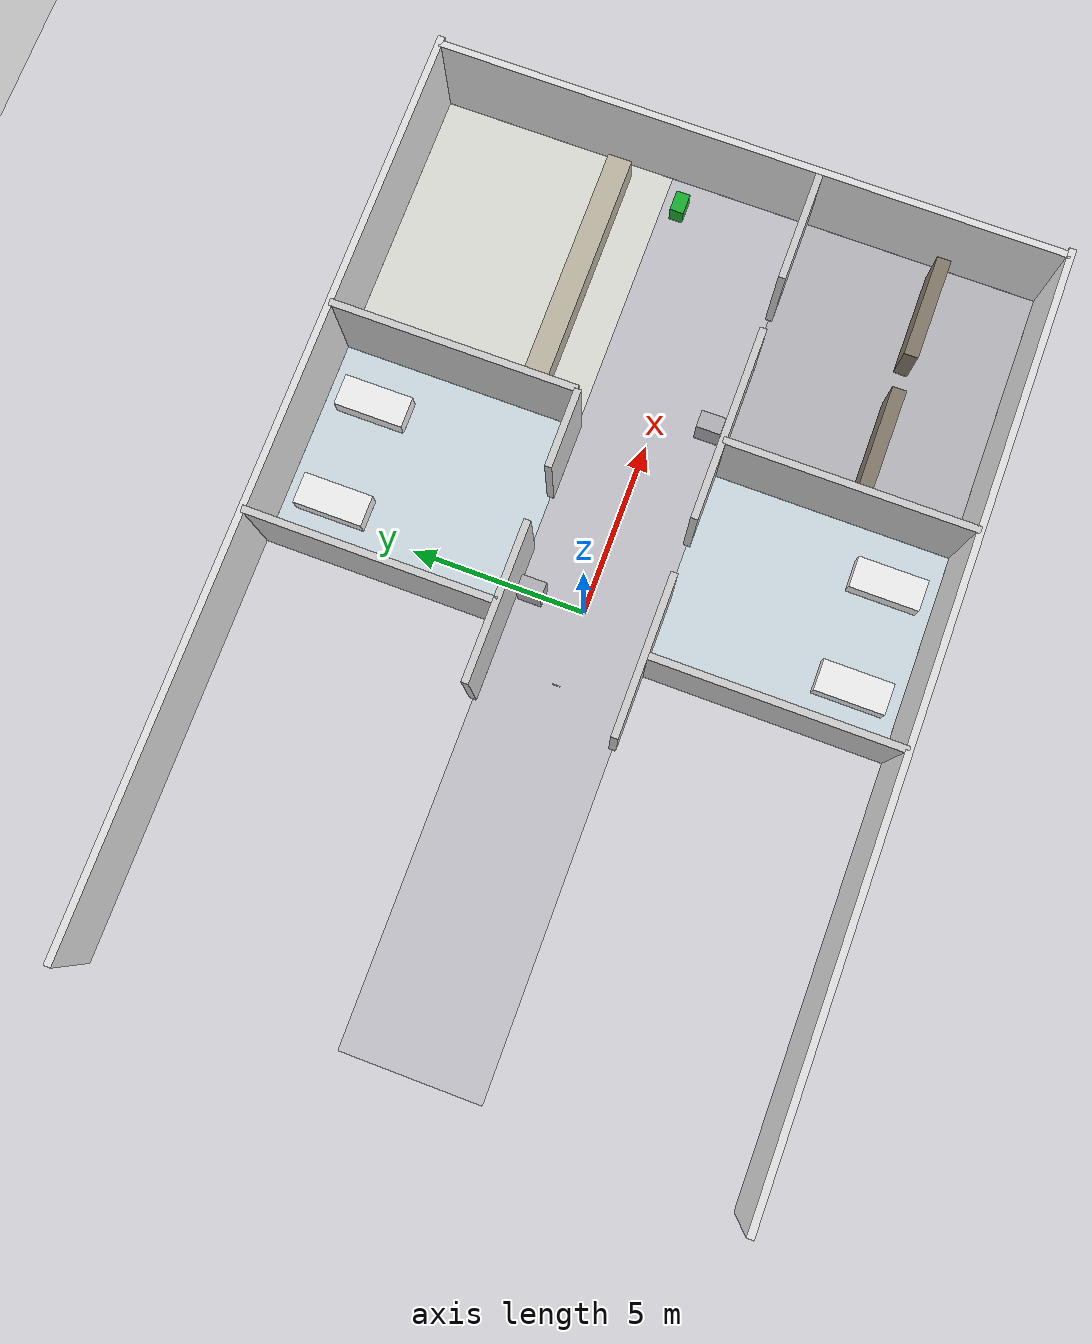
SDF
<sdf version="1.8">
 <world name="hospital">
  <model name="ground_plane">
   <static>true</static>
   <link name="link">
    <collision name="c"><geometry><plane><normal>0 0 1</normal><size>100 100</size></plane></geometry></collision>
    <visual name="v">
     <geometry><plane><normal>0 0 1</normal><size>100 100</size></plane></geometry>
     <material><ambient>0.84 0.84 0.86 1</ambient><diffuse>0.84 0.84 0.86 1</diffuse></material>
    </visual>
   </link>
  </model>
  <model name="zone_corridor">
   <static>true</static>
   <pose>0 0 0.003 0 0 0</pose>
   <link name="link">
    <collision name="c"><geometry><box><size>26 4 0.005</size></box></geometry></collision>
    <visual name="v">
     <geometry><box><size>26 4 0.005</size></box></geometry>
     <material><ambient>0.80 0.80 0.83 0.8</ambient><diffuse>0.80 0.80 0.83 0.8</diffuse></material>
    </visual>
   </link>
  </model>
  <model name="zone_n3">
   <static>true</static>
   <pose>2 5.5 0.003 0 0 0</pose>
   <link name="link">
    <collision name="c"><geometry><box><size>6 7 0.005</size></box></geometry></collision>
    <visual name="v">
     <geometry><box><size>6 7 0.005</size></box></geometry>
     <material><ambient>0.85 0.92 0.96 0.7</ambient><diffuse>0.85 0.92 0.96 0.7</diffuse></material>
    </visual>
   </link>
  </model>
  <model name="zone_nurse">
   <static>true</static>
   <pose>9 5.5 0.003 0 0 0</pose>
   <link name="link">
    <collision name="c"><geometry><box><size>8 7 0.005</size></box></geometry></collision>
    <visual name="v">
     <geometry><box><size>8 7 0.005</size></box></geometry>
     <material><ambient>0.94 0.94 0.90 0.7</ambient><diffuse>0.94 0.94 0.90 0.7</diffuse></material>
    </visual>
   </link>
  </model>
  <model name="zone_s3">
   <static>true</static>
   <pose>2 -5.5 0.003 0 0 0</pose>
   <link name="link">
    <collision name="c"><geometry><box><size>6 7 0.005</size></box></geometry></collision>
    <visual name="v">
     <geometry><box><size>6 7 0.005</size></box></geometry>
     <material><ambient>0.85 0.92 0.96 0.7</ambient><diffuse>0.85 0.92 0.96 0.7</diffuse></material>
    </visual>
   </link>
  </model>
  <model name="zone_storage">
   <static>true</static>
   <pose>9 -5.5 0.003 0 0 0</pose>
   <link name="link">
    <collision name="c"><geometry><box><size>8 7 0.005</size></box></geometry></collision>
    <visual name="v">
     <geometry><box><size>8 7 0.005</size></box></geometry>
     <material><ambient>0.72 0.72 0.74 0.7</ambient><diffuse>0.72 0.72 0.74 0.7</diffuse></material>
    </visual>
   </link>
  </model>
  <model name="wall_north">
   <static>true</static>
   <pose>0 9 1.5 0 0 0</pose>
   <link name="link">
    <collision name="c"><geometry><box><size>26.4 0.2 3</size></box></geometry></collision>
    <visual name="v">
     <geometry><box><size>26.4 0.2 3</size></box></geometry>
     <material><ambient>0.90 0.90 0.90 1</ambient><diffuse>0.90 0.90 0.90 1</diffuse></material>
    </visual>
   </link>
  </model>
  <model name="wall_south">
   <static>true</static>
   <pose>0 -9 1.5 0 0 0</pose>
   <link name="link">
    <collision name="c"><geometry><box><size>26.4 0.2 3</size></box></geometry></collision>
    <visual name="v">
     <geometry><box><size>26.4 0.2 3</size></box></geometry>
     <material><ambient>0.90 0.90 0.90 1</ambient><diffuse>0.90 0.90 0.90 1</diffuse></material>
    </visual>
   </link>
  </model>
  <model name="wall_east">
   <static>true</static>
   <pose>13 0 1.5 0 0 0</pose>
   <link name="link">
    <collision name="c"><geometry><box><size>0.2 18 3</size></box></geometry></collision>
    <visual name="v">
     <geometry><box><size>0.2 18 3</size></box></geometry>
     <material><ambient>0.90 0.90 0.90 1</ambient><diffuse>0.90 0.90 0.90 1</diffuse></material>
    </visual>
   </link>
  </model>
  <model name="ncw_3">
   <static>true</static>
   <pose>-1.0 2 1.5 0 0 0</pose>
   <link name="link">
    <collision name="c"><geometry><box><size>4.5 0.2 3</size></box></geometry></collision>
    <visual name="v">
     <geometry><box><size>4.5 0.2 3</size></box></geometry>
     <material><ambient>0.82 0.82 0.82 1</ambient><diffuse>0.82 0.82 0.82 1</diffuse></material>
    </visual>
   </link>
  </model>
  <model name="ncw_4">
   <static>true</static>
   <pose>3.875 2 1.5 0 0 0</pose>
   <link name="link">
    <collision name="c"><geometry><box><size>2.25 0.2 3</size></box></geometry></collision>
    <visual name="v">
     <geometry><box><size>2.25 0.2 3</size></box></geometry>
     <material><ambient>0.82 0.82 0.82 1</ambient><diffuse>0.82 0.82 0.82 1</diffuse></material>
    </visual>
   </link>
  </model>
  <model name="scw_3">
   <static>true</static>
   <pose>-1.0 -2 1.5 0 0 0</pose>
   <link name="link">
    <collision name="c"><geometry><box><size>4.5 0.2 3</size></box></geometry></collision>
    <visual name="v">
     <geometry><box><size>4.5 0.2 3</size></box></geometry>
     <material><ambient>0.82 0.82 0.82 1</ambient><diffuse>0.82 0.82 0.82 1</diffuse></material>
    </visual>
   </link>
  </model>
  <model name="scw_4">
   <static>true</static>
   <pose>5.5 -2 1.5 0 0 0</pose>
   <link name="link">
    <collision name="c"><geometry><box><size>5.5 0.2 3</size></box></geometry></collision>
    <visual name="v">
     <geometry><box><size>5.5 0.2 3</size></box></geometry>
     <material><ambient>0.82 0.82 0.82 1</ambient><diffuse>0.82 0.82 0.82 1</diffuse></material>
    </visual>
   </link>
  </model>
  <model name="scw_5">
   <static>true</static>
   <pose>11.375 -2 1.5 0 0 0</pose>
   <link name="link">
    <collision name="c"><geometry><box><size>3.25 0.2 3</size></box></geometry></collision>
    <visual name="v">
     <geometry><box><size>3.25 0.2 3</size></box></geometry>
     <material><ambient>0.82 0.82 0.82 1</ambient><diffuse>0.82 0.82 0.82 1</diffuse></material>
    </visual>
   </link>
  </model>
  <model name="ndiv_n2_n3">
   <static>true</static>
   <pose>-1 5.5 1.5 0 0 0</pose>
   <link name="link">
    <collision name="c"><geometry><box><size>0.2 7 3</size></box></geometry></collision>
    <visual name="v">
     <geometry><box><size>0.2 7 3</size></box></geometry>
     <material><ambient>0.82 0.82 0.82 1</ambient><diffuse>0.82 0.82 0.82 1</diffuse></material>
    </visual>
   </link>
  </model>
  <model name="ndiv_n3_nrs">
   <static>true</static>
   <pose>5 5.5 1.5 0 0 0</pose>
   <link name="link">
    <collision name="c"><geometry><box><size>0.2 7 3</size></box></geometry></collision>
    <visual name="v">
     <geometry><box><size>0.2 7 3</size></box></geometry>
     <material><ambient>0.82 0.82 0.82 1</ambient><diffuse>0.82 0.82 0.82 1</diffuse></material>
    </visual>
   </link>
  </model>
  <model name="sdiv_s2_s3">
   <static>true</static>
   <pose>-1 -5.5 1.5 0 0 0</pose>
   <link name="link">
    <collision name="c"><geometry><box><size>0.2 7 3</size></box></geometry></collision>
    <visual name="v">
     <geometry><box><size>0.2 7 3</size></box></geometry>
     <material><ambient>0.82 0.82 0.82 1</ambient><diffuse>0.82 0.82 0.82 1</diffuse></material>
    </visual>
   </link>
  </model>
  <model name="sdiv_s3_sto">
   <static>true</static>
   <pose>5 -5.5 1.5 0 0 0</pose>
   <link name="link">
    <collision name="c"><geometry><box><size>0.2 7 3</size></box></geometry></collision>
    <visual name="v">
     <geometry><box><size>0.2 7 3</size></box></geometry>
     <material><ambient>0.82 0.82 0.82 1</ambient><diffuse>0.82 0.82 0.82 1</diffuse></material>
    </visual>
   </link>
  </model>
  <model name="bed_n3_a">
   <static>true</static>
   <pose>0.5 7.5 0.3 0 0 0</pose>
   <link name="link">
    <collision name="c"><geometry><box><size>0.9 2.0 0.6</size></box></geometry></collision>
    <visual name="v">
     <geometry><box><size>0.9 2.0 0.6</size></box></geometry>
     <material><ambient>0.95 0.95 0.95 1</ambient><diffuse>0.95 0.95 0.95 1</diffuse></material>
    </visual>
   </link>
  </model>
  <model name="bed_n3_b">
   <static>true</static>
   <pose>3.5 7.5 0.3 0 0 0</pose>
   <link name="link">
    <collision name="c"><geometry><box><size>0.9 2.0 0.6</size></box></geometry></collision>
    <visual name="v">
     <geometry><box><size>0.9 2.0 0.6</size></box></geometry>
     <material><ambient>0.95 0.95 0.95 1</ambient><diffuse>0.95 0.95 0.95 1</diffuse></material>
    </visual>
   </link>
  </model>
  <model name="bed_s3_a">
   <static>true</static>
   <pose>0.5 -7.5 0.3 0 0 0</pose>
   <link name="link">
    <collision name="c"><geometry><box><size>0.9 2.0 0.6</size></box></geometry></collision>
    <visual name="v">
     <geometry><box><size>0.9 2.0 0.6</size></box></geometry>
     <material><ambient>0.95 0.95 0.95 1</ambient><diffuse>0.95 0.95 0.95 1</diffuse></material>
    </visual>
   </link>
  </model>
  <model name="bed_s3_b">
   <static>true</static>
   <pose>3.5 -7.5 0.3 0 0 0</pose>
   <link name="link">
    <collision name="c"><geometry><box><size>0.9 2.0 0.6</size></box></geometry></collision>
    <visual name="v">
     <geometry><box><size>0.9 2.0 0.6</size></box></geometry>
     <material><ambient>0.95 0.95 0.95 1</ambient><diffuse>0.95 0.95 0.95 1</diffuse></material>
    </visual>
   </link>
  </model>
  <model name="nurse_counter">
   <static>true</static>
   <pose>9 3.5 0.5 0 0 0</pose>
   <link name="link">
    <collision name="c"><geometry><box><size>7.0 0.7 1.0</size></box></geometry></collision>
    <visual name="v">
     <geometry><box><size>7.0 0.7 1.0</size></box></geometry>
     <material><ambient>0.75 0.72 0.65 1</ambient><diffuse>0.75 0.72 0.65 1</diffuse></material>
    </visual>
   </link>
  </model>
  <model name="shelf_sto_1">
   <static>true</static>
   <pose>7 -6 0.75 0 0 0</pose>
   <link name="link">
    <collision name="c"><geometry><box><size>3 0.4 1.5</size></box></geometry></collision>
    <visual name="v">
     <geometry><box><size>3 0.4 1.5</size></box></geometry>
     <material><ambient>0.52 0.48 0.42 1</ambient><diffuse>0.52 0.48 0.42 1</diffuse></material>
    </visual>
   </link>
  </model>
  <model name="shelf_sto_2">
   <static>true</static>
   <pose>11 -6 0.75 0 0 0</pose>
   <link name="link">
    <collision name="c"><geometry><box><size>3 0.4 1.5</size></box></geometry></collision>
    <visual name="v">
     <geometry><box><size>3 0.4 1.5</size></box></geometry>
     <material><ambient>0.52 0.48 0.42 1</ambient><diffuse>0.52 0.48 0.42 1</diffuse></material>
    </visual>
   </link>
  </model>
  <model name="cart_1">
   <static>true</static>
   <pose>0 1.5 0.5 0 0 0</pose>
   <link name="link">
    <collision name="c"><geometry><box><size>0.5 0.7 1.0</size></box></geometry></collision>
    <visual name="v">
     <geometry><box><size>0.5 0.7 1.0</size></box></geometry>
     <material><ambient>0.70 0.70 0.72 1</ambient><diffuse>0.70 0.70 0.72 1</diffuse></material>
    </visual>
   </link>
  </model>
  <model name="cart_2">
   <static>true</static>
   <pose>6 -1.5 0.5 0 0 0</pose>
   <link name="link">
    <collision name="c"><geometry><box><size>0.5 0.7 1.0</size></box></geometry></collision>
    <visual name="v">
     <geometry><box><size>0.5 0.7 1.0</size></box></geometry>
     <material><ambient>0.70 0.70 0.72 1</ambient><diffuse>0.70 0.70 0.72 1</diffuse></material>
    </visual>
   </link>
  </model>
  <model name="charger">
   <static>true</static>
   <pose>12 1.5 0.3 0 0 0</pose>
   <link name="link">
    <collision name="c"><geometry><box><size>0.6 0.4 0.6</size></box></geometry></collision>
    <visual name="v">
     <geometry><box><size>0.6 0.4 0.6</size></box></geometry>
     <material><ambient>0.1 0.7 0.2 1</ambient><diffuse>0.1 0.7 0.2 1</diffuse></material>
    </visual>
   </link>
  </model>
  <model name="world_monitor_cam">
   <static>true</static>
   <pose>-1.4 0.45 0.4 0 0.2810 -2.5952</pose>
   <link name="link">
    <sensor name="monitor_camera" type="camera">
     <always_on>true</always_on>
     <update_rate>10</update_rate>
     <topic>world_monitor/image_raw</topic>
     <camera>
      <horizontal_fov>1.0</horizontal_fov>
      <image><width>800</width><height>600</height><format>R8G8B8</format></image>
      <clip><near>0.05</near><far>20.0</far></clip>
     </camera>
    </sensor>
   </link>
  </model>
  <model name="dock_marker_r3c3">
   <static>true</static>
   <pose>-2.14 0.02 0.13 0 0 0</pose>
   <link name="link">
    <visual name="v">
     <geometry><box><size>0.01 0.04 0.04</size></box></geometry>
     <material><ambient>0.95 0.95 0.95 1</ambient><diffuse>0.95 0.95 0.95 1</diffuse></material>
    </visual>
   </link>
  </model>
  <model name="dock_marker_r3c4">
   <static>true</static>
   <pose>-2.14 0.06 0.13 0 0 0</pose>
   <link name="link">
    <visual name="v">
     <geometry><box><size>0.01 0.04 0.04</size></box></geometry>
     <material><ambient>0.95 0.95 0.95 1</ambient><diffuse>0.95 0.95 0.95 1</diffuse></material>
    </visual>
   </link>
  </model>
  <model name="dock_marker_r3c5">
   <static>true</static>
   <pose>-2.14 0.1 0.13 0 0 0</pose>
   <link name="link">
    <visual name="v">
     <geometry><box><size>0.01 0.04 0.04</size></box></geometry>
     <material><ambient>0.02 0.02 0.02 1</ambient><diffuse>0.02 0.02 0.02 1</diffuse></material>
    </visual>
   </link>
  </model>
  <model name="dock_marker_r4c0">
   <static>true</static>
   <pose>-2.14 -0.1 0.09 0 0 0</pose>
   <link name="link">
    <visual name="v">
     <geometry><box><size>0.01 0.04 0.04</size></box></geometry>
     <material><ambient>0.02 0.02 0.02 1</ambient><diffuse>0.02 0.02 0.02 1</diffuse></material>
    </visual>
   </link>
  </model>
  <model name="dock_marker_r4c1">
   <static>true</static>
   <pose>-2.14 -0.06 0.09 0 0 0</pose>
   <link name="link">
    <visual name="v">
     <geometry><box><size>0.01 0.04 0.04</size></box></geometry>
     <material><ambient>0.02 0.02 0.02 1</ambient><diffuse>0.02 0.02 0.02 1</diffuse></material>
    </visual>
   </link>
  </model>
  <model name="dock_marker_r4c2">
   <static>true</static>
   <pose>-2.14 -0.02 0.09 0 0 0</pose>
   <link name="link">
    <visual name="v">
     <geometry><box><size>0.01 0.04 0.04</size></box></geometry>
     <material><ambient>0.02 0.02 0.02 1</ambient><diffuse>0.02 0.02 0.02 1</diffuse></material>
    </visual>
   </link>
  </model>
  <model name="dock_marker_r4c3">
   <static>true</static>
   <pose>-2.14 0.02 0.09 0 0 0</pose>
   <link name="link">
    <visual name="v">
     <geometry><box><size>0.01 0.04 0.04</size></box></geometry>
     <material><ambient>0.95 0.95 0.95 1</ambient><diffuse>0.95 0.95 0.95 1</diffuse></material>
    </visual>
   </link>
  </model>
  <model name="dock_marker_r4c4">
   <static>true</static>
   <pose>-2.14 0.06 0.09 0 0 0</pose>
   <link name="link">
    <visual name="v">
     <geometry><box><size>0.01 0.04 0.04</size></box></geometry>
     <material><ambient>0.02 0.02 0.02 1</ambient><diffuse>0.02 0.02 0.02 1</diffuse></material>
    </visual>
   </link>
  </model>
  <model name="dock_marker_r4c5">
   <static>true</static>
   <pose>-2.14 0.1 0.09 0 0 0</pose>
   <link name="link">
    <visual name="v">
     <geometry><box><size>0.01 0.04 0.04</size></box></geometry>
     <material><ambient>0.02 0.02 0.02 1</ambient><diffuse>0.02 0.02 0.02 1</diffuse></material>
    </visual>
   </link>
  </model>
  <model name="dock_marker_r5c0">
   <static>true</static>
   <pose>-2.14 -0.1 0.05 0 0 0</pose>
   <link name="link">
    <visual name="v">
     <geometry><box><size>0.01 0.04 0.04</size></box></geometry>
     <material><ambient>0.02 0.02 0.02 1</ambient><diffuse>0.02 0.02 0.02 1</diffuse></material>
    </visual>
   </link>
  </model>
  <model name="dock_marker_r5c1">
   <static>true</static>
   <pose>-2.14 -0.06 0.05 0 0 0</pose>
   <link name="link">
    <visual name="v">
     <geometry><box><size>0.01 0.04 0.04</size></box></geometry>
     <material><ambient>0.02 0.02 0.02 1</ambient><diffuse>0.02 0.02 0.02 1</diffuse></material>
    </visual>
   </link>
  </model>
  <model name="dock_marker_r5c2">
   <static>true</static>
   <pose>-2.14 -0.02 0.05 0 0 0</pose>
   <link name="link">
    <visual name="v">
     <geometry><box><size>0.01 0.04 0.04</size></box></geometry>
     <material><ambient>0.02 0.02 0.02 1</ambient><diffuse>0.02 0.02 0.02 1</diffuse></material>
    </visual>
   </link>
  </model>
  <model name="dock_marker_r5c3">
   <static>true</static>
   <pose>-2.14 0.02 0.05 0 0 0</pose>
   <link name="link">
    <visual name="v">
     <geometry><box><size>0.01 0.04 0.04</size></box></geometry>
     <material><ambient>0.02 0.02 0.02 1</ambient><diffuse>0.02 0.02 0.02 1</diffuse></material>
    </visual>
   </link>
  </model>
  <model name="dock_marker_r5c4">
   <static>true</static>
   <pose>-2.14 0.06 0.05 0 0 0</pose>
   <link name="link">
    <visual name="v">
     <geometry><box><size>0.01 0.04 0.04</size></box></geometry>
     <material><ambient>0.02 0.02 0.02 1</ambient><diffuse>0.02 0.02 0.02 1</diffuse></material>
    </visual>
   </link>
  </model>
  <model name="dock_marker_r5c5">
   <static>true</static>
   <pose>-2.14 0.1 0.05 0 0 0</pose>
   <link name="link">
    <visual name="v">
     <geometry><box><size>0.01 0.04 0.04</size></box></geometry>
     <material><ambient>0.02 0.02 0.02 1</ambient><diffuse>0.02 0.02 0.02 1</diffuse></material>
    </visual>
   </link>
  </model>
 </world>
</sdf>
